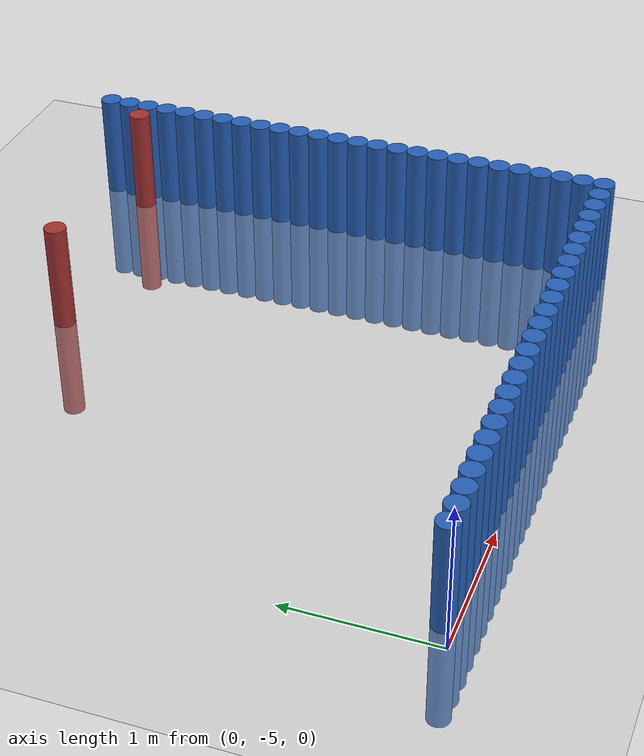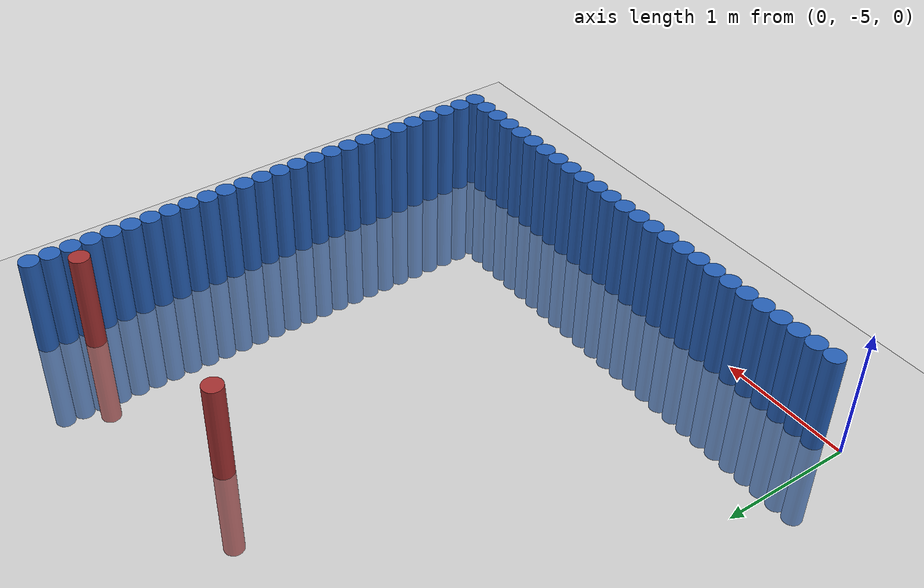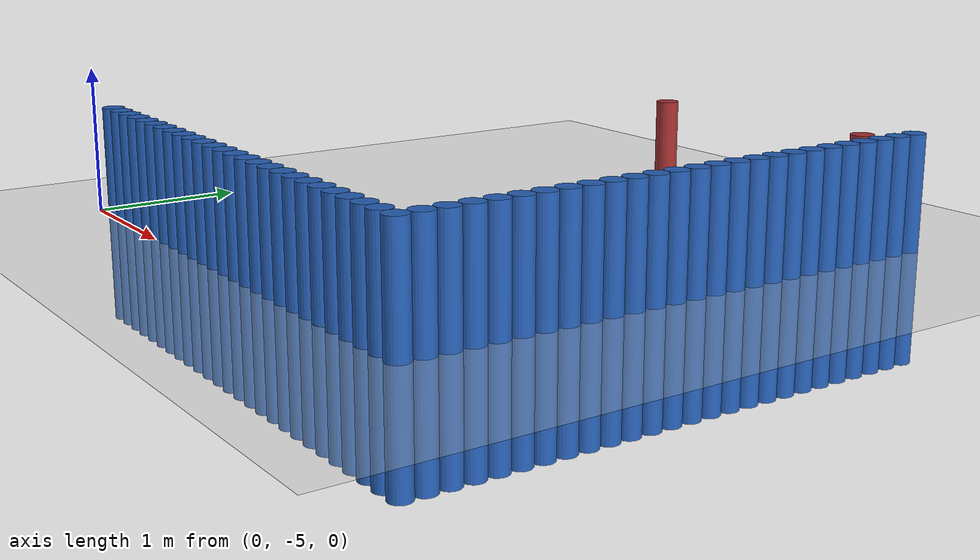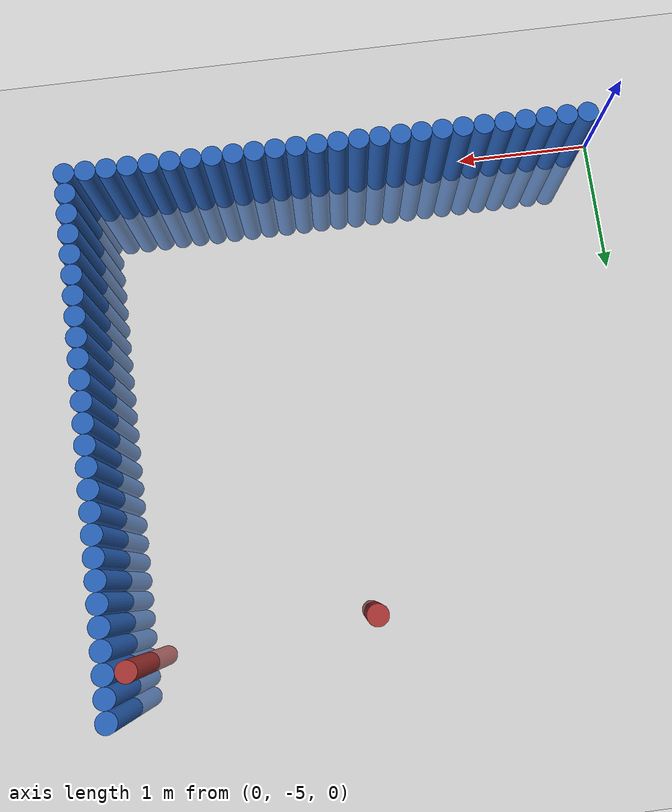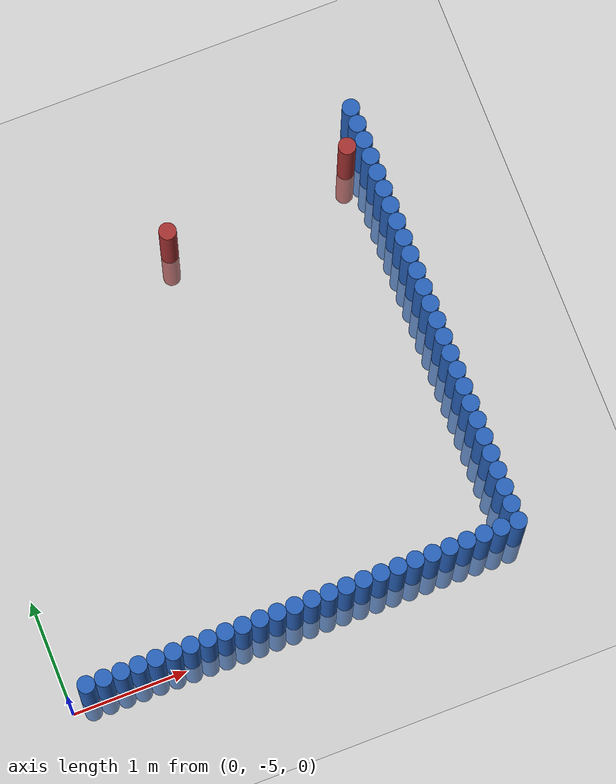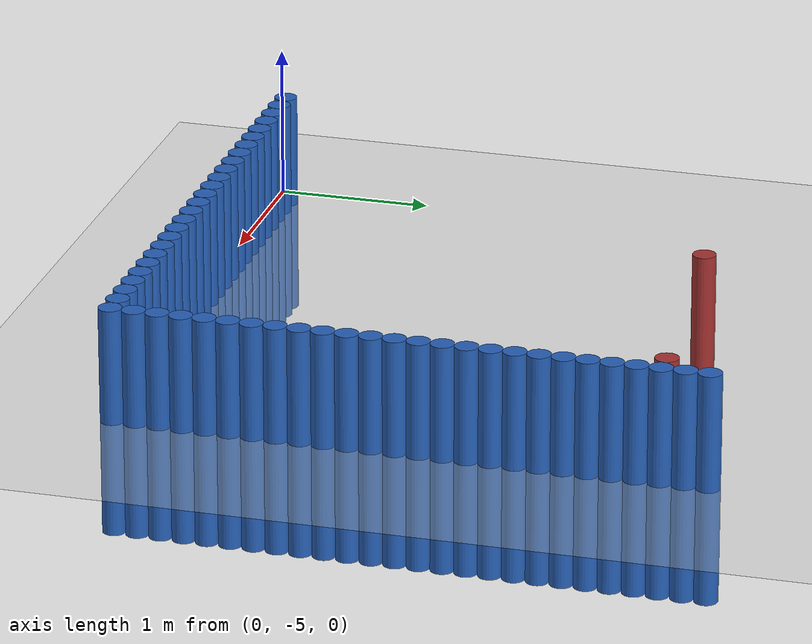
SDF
<sdf version="1.7">
 <world name="default">
  <model name="ground_plane">
   <static>1</static>
   <link name="link">
    <collision name="collision">
     <geometry><plane><normal>0 0 1</normal><size>100 100</size></plane></geometry>
     <surface><friction><ode><mu>100</mu><mu2>50</mu2></ode></friction></surface>
    </collision>
    <visual name="visual">
     <cast_shadows>0</cast_shadows>
     <geometry><plane><normal>0 0 1</normal><size>100 100</size></plane></geometry>
     <material>
      <script><uri>file://media/materials/scripts/gazebo.material</uri><name>Gazebo/Grey</name></script>
     </material>
    </visual>
   </link>
  </model>
  <model name="unit_cylinder_0">
   <static>1</static>
   <pose>3.925 -4.925 0 0 -0 0</pose>
   <link name="link">
    <inertial>
     <mass>1</mass>
     <inertia><ixx>0.145833</ixx><ixy>0</ixy><ixz>0</ixz><iyy>0.145833</iyy><iyz>0</iyz><izz>0.125</izz></inertia>
    </inertial>
    <collision name="collision">
     <geometry><cylinder><radius>0.075</radius><length>1.5</length></cylinder></geometry>
    </collision>
    <visual name="visual">
     <geometry><cylinder><radius>0.075</radius><length>1.5</length></cylinder></geometry>
     <material><ambient>0.152 0.379 0.72 1</ambient><diffuse>0.152 0.379 0.72 1</diffuse></material>
     <material>
      <script><name>Gazebo/Grey</name><uri>file://media/materials/scripts/gazebo.material</uri></script>
     </material>
    </visual>
   </link>
  </model>
  <model name="unit_cylinder_1">
   <static>1</static>
   <pose>3.775 -4.925 0 0 -0 0</pose>
   <link name="link">
    <inertial>
     <mass>1</mass>
     <inertia><ixx>0.145833</ixx><ixy>0</ixy><ixz>0</ixz><iyy>0.145833</iyy><iyz>0</iyz><izz>0.125</izz></inertia>
    </inertial>
    <collision name="collision">
     <geometry><cylinder><radius>0.075</radius><length>1.5</length></cylinder></geometry>
    </collision>
    <visual name="visual">
     <geometry><cylinder><radius>0.075</radius><length>1.5</length></cylinder></geometry>
     <material><ambient>0.152 0.379 0.72 1</ambient><diffuse>0.152 0.379 0.72 1</diffuse></material>
     <material>
      <script><name>Gazebo/Grey</name><uri>file://media/materials/scripts/gazebo.material</uri></script>
     </material>
    </visual>
   </link>
  </model>
  <model name="unit_cylinder_2">
   <static>1</static>
   <pose>3.625 -4.925 0 0 -0 0</pose>
   <link name="link">
    <inertial>
     <mass>1</mass>
     <inertia><ixx>0.145833</ixx><ixy>0</ixy><ixz>0</ixz><iyy>0.145833</iyy><iyz>0</iyz><izz>0.125</izz></inertia>
    </inertial>
    <collision name="collision">
     <geometry><cylinder><radius>0.075</radius><length>1.5</length></cylinder></geometry>
    </collision>
    <visual name="visual">
     <geometry><cylinder><radius>0.075</radius><length>1.5</length></cylinder></geometry>
     <material><ambient>0.152 0.379 0.72 1</ambient><diffuse>0.152 0.379 0.72 1</diffuse></material>
     <material>
      <script><name>Gazebo/Grey</name><uri>file://media/materials/scripts/gazebo.material</uri></script>
     </material>
    </visual>
   </link>
  </model>
  <model name="unit_cylinder_3">
   <static>1</static>
   <pose>3.475 -4.925 0 0 -0 0</pose>
   <link name="link">
    <inertial>
     <mass>1</mass>
     <inertia><ixx>0.145833</ixx><ixy>0</ixy><ixz>0</ixz><iyy>0.145833</iyy><iyz>0</iyz><izz>0.125</izz></inertia>
    </inertial>
    <collision name="collision">
     <geometry><cylinder><radius>0.075</radius><length>1.5</length></cylinder></geometry>
    </collision>
    <visual name="visual">
     <geometry><cylinder><radius>0.075</radius><length>1.5</length></cylinder></geometry>
     <material><ambient>0.152 0.379 0.72 1</ambient><diffuse>0.152 0.379 0.72 1</diffuse></material>
     <material>
      <script><name>Gazebo/Grey</name><uri>file://media/materials/scripts/gazebo.material</uri></script>
     </material>
    </visual>
   </link>
  </model>
  <model name="unit_cylinder_4">
   <static>1</static>
   <pose>3.325 -4.925 0 0 -0 0</pose>
   <link name="link">
    <inertial>
     <mass>1</mass>
     <inertia><ixx>0.145833</ixx><ixy>0</ixy><ixz>0</ixz><iyy>0.145833</iyy><iyz>0</iyz><izz>0.125</izz></inertia>
    </inertial>
    <collision name="collision">
     <geometry><cylinder><radius>0.075</radius><length>1.5</length></cylinder></geometry>
    </collision>
    <visual name="visual">
     <geometry><cylinder><radius>0.075</radius><length>1.5</length></cylinder></geometry>
     <material><ambient>0.152 0.379 0.72 1</ambient><diffuse>0.152 0.379 0.72 1</diffuse></material>
     <material>
      <script><name>Gazebo/Grey</name><uri>file://media/materials/scripts/gazebo.material</uri></script>
     </material>
    </visual>
   </link>
  </model>
  <model name="unit_cylinder_5">
   <static>1</static>
   <pose>3.175 -4.925 0 0 -0 0</pose>
   <link name="link">
    <inertial>
     <mass>1</mass>
     <inertia><ixx>0.145833</ixx><ixy>0</ixy><ixz>0</ixz><iyy>0.145833</iyy><iyz>0</iyz><izz>0.125</izz></inertia>
    </inertial>
    <collision name="collision">
     <geometry><cylinder><radius>0.075</radius><length>1.5</length></cylinder></geometry>
    </collision>
    <visual name="visual">
     <geometry><cylinder><radius>0.075</radius><length>1.5</length></cylinder></geometry>
     <material><ambient>0.152 0.379 0.72 1</ambient><diffuse>0.152 0.379 0.72 1</diffuse></material>
     <material>
      <script><name>Gazebo/Grey</name><uri>file://media/materials/scripts/gazebo.material</uri></script>
     </material>
    </visual>
   </link>
  </model>
  <model name="unit_cylinder_6">
   <static>1</static>
   <pose>3.025 -4.925 0 0 -0 0</pose>
   <link name="link">
    <inertial>
     <mass>1</mass>
     <inertia><ixx>0.145833</ixx><ixy>0</ixy><ixz>0</ixz><iyy>0.145833</iyy><iyz>0</iyz><izz>0.125</izz></inertia>
    </inertial>
    <collision name="collision">
     <geometry><cylinder><radius>0.075</radius><length>1.5</length></cylinder></geometry>
    </collision>
    <visual name="visual">
     <geometry><cylinder><radius>0.075</radius><length>1.5</length></cylinder></geometry>
     <material><ambient>0.152 0.379 0.72 1</ambient><diffuse>0.152 0.379 0.72 1</diffuse></material>
     <material>
      <script><name>Gazebo/Grey</name><uri>file://media/materials/scripts/gazebo.material</uri></script>
     </material>
    </visual>
   </link>
  </model>
  <model name="unit_cylinder_7">
   <static>1</static>
   <pose>2.875 -4.925 0 0 -0 0</pose>
   <link name="link">
    <inertial>
     <mass>1</mass>
     <inertia><ixx>0.145833</ixx><ixy>0</ixy><ixz>0</ixz><iyy>0.145833</iyy><iyz>0</iyz><izz>0.125</izz></inertia>
    </inertial>
    <collision name="collision">
     <geometry><cylinder><radius>0.075</radius><length>1.5</length></cylinder></geometry>
    </collision>
    <visual name="visual">
     <geometry><cylinder><radius>0.075</radius><length>1.5</length></cylinder></geometry>
     <material><ambient>0.152 0.379 0.72 1</ambient><diffuse>0.152 0.379 0.72 1</diffuse></material>
     <material>
      <script><name>Gazebo/Grey</name><uri>file://media/materials/scripts/gazebo.material</uri></script>
     </material>
    </visual>
   </link>
  </model>
  <model name="unit_cylinder_8">
   <static>1</static>
   <pose>2.725 -4.925 0 0 -0 0</pose>
   <link name="link">
    <inertial>
     <mass>1</mass>
     <inertia><ixx>0.145833</ixx><ixy>0</ixy><ixz>0</ixz><iyy>0.145833</iyy><iyz>0</iyz><izz>0.125</izz></inertia>
    </inertial>
    <collision name="collision">
     <geometry><cylinder><radius>0.075</radius><length>1.5</length></cylinder></geometry>
    </collision>
    <visual name="visual">
     <geometry><cylinder><radius>0.075</radius><length>1.5</length></cylinder></geometry>
     <material><ambient>0.152 0.379 0.72 1</ambient><diffuse>0.152 0.379 0.72 1</diffuse></material>
     <material>
      <script><name>Gazebo/Grey</name><uri>file://media/materials/scripts/gazebo.material</uri></script>
     </material>
    </visual>
   </link>
  </model>
  <model name="unit_cylinder_9">
   <static>1</static>
   <pose>2.575 -4.925 0 0 -0 0</pose>
   <link name="link">
    <inertial>
     <mass>1</mass>
     <inertia><ixx>0.145833</ixx><ixy>0</ixy><ixz>0</ixz><iyy>0.145833</iyy><iyz>0</iyz><izz>0.125</izz></inertia>
    </inertial>
    <collision name="collision">
     <geometry><cylinder><radius>0.075</radius><length>1.5</length></cylinder></geometry>
    </collision>
    <visual name="visual">
     <geometry><cylinder><radius>0.075</radius><length>1.5</length></cylinder></geometry>
     <material><ambient>0.152 0.379 0.72 1</ambient><diffuse>0.152 0.379 0.72 1</diffuse></material>
     <material>
      <script><name>Gazebo/Grey</name><uri>file://media/materials/scripts/gazebo.material</uri></script>
     </material>
    </visual>
   </link>
  </model>
  <model name="unit_cylinder_10">
   <static>1</static>
   <pose>2.425 -4.925 0 0 -0 0</pose>
   <link name="link">
    <inertial>
     <mass>1</mass>
     <inertia><ixx>0.145833</ixx><ixy>0</ixy><ixz>0</ixz><iyy>0.145833</iyy><iyz>0</iyz><izz>0.125</izz></inertia>
    </inertial>
    <collision name="collision">
     <geometry><cylinder><radius>0.075</radius><length>1.5</length></cylinder></geometry>
    </collision>
    <visual name="visual">
     <geometry><cylinder><radius>0.075</radius><length>1.5</length></cylinder></geometry>
     <material><ambient>0.152 0.379 0.72 1</ambient><diffuse>0.152 0.379 0.72 1</diffuse></material>
     <material>
      <script><name>Gazebo/Grey</name><uri>file://media/materials/scripts/gazebo.material</uri></script>
     </material>
    </visual>
   </link>
  </model>
  <model name="unit_cylinder_11">
   <static>1</static>
   <pose>2.275 -4.925 0 0 -0 0</pose>
   <link name="link">
    <inertial>
     <mass>1</mass>
     <inertia><ixx>0.145833</ixx><ixy>0</ixy><ixz>0</ixz><iyy>0.145833</iyy><iyz>0</iyz><izz>0.125</izz></inertia>
    </inertial>
    <collision name="collision">
     <geometry><cylinder><radius>0.075</radius><length>1.5</length></cylinder></geometry>
    </collision>
    <visual name="visual">
     <geometry><cylinder><radius>0.075</radius><length>1.5</length></cylinder></geometry>
     <material><ambient>0.152 0.379 0.72 1</ambient><diffuse>0.152 0.379 0.72 1</diffuse></material>
     <material>
      <script><name>Gazebo/Grey</name><uri>file://media/materials/scripts/gazebo.material</uri></script>
     </material>
    </visual>
   </link>
  </model>
  <model name="unit_cylinder_12">
   <static>1</static>
   <pose>2.125 -4.925 0 0 -0 0</pose>
   <link name="link">
    <inertial>
     <mass>1</mass>
     <inertia><ixx>0.145833</ixx><ixy>0</ixy><ixz>0</ixz><iyy>0.145833</iyy><iyz>0</iyz><izz>0.125</izz></inertia>
    </inertial>
    <collision name="collision">
     <geometry><cylinder><radius>0.075</radius><length>1.5</length></cylinder></geometry>
    </collision>
    <visual name="visual">
     <geometry><cylinder><radius>0.075</radius><length>1.5</length></cylinder></geometry>
     <material><ambient>0.152 0.379 0.72 1</ambient><diffuse>0.152 0.379 0.72 1</diffuse></material>
     <material>
      <script><name>Gazebo/Grey</name><uri>file://media/materials/scripts/gazebo.material</uri></script>
     </material>
    </visual>
   </link>
  </model>
  <model name="unit_cylinder_13">
   <static>1</static>
   <pose>1.975 -4.925 0 0 -0 0</pose>
   <link name="link">
    <inertial>
     <mass>1</mass>
     <inertia><ixx>0.145833</ixx><ixy>0</ixy><ixz>0</ixz><iyy>0.145833</iyy><iyz>0</iyz><izz>0.125</izz></inertia>
    </inertial>
    <collision name="collision">
     <geometry><cylinder><radius>0.075</radius><length>1.5</length></cylinder></geometry>
    </collision>
    <visual name="visual">
     <geometry><cylinder><radius>0.075</radius><length>1.5</length></cylinder></geometry>
     <material><ambient>0.152 0.379 0.72 1</ambient><diffuse>0.152 0.379 0.72 1</diffuse></material>
     <material>
      <script><name>Gazebo/Grey</name><uri>file://media/materials/scripts/gazebo.material</uri></script>
     </material>
    </visual>
   </link>
  </model>
  <model name="unit_cylinder_14">
   <static>1</static>
   <pose>1.825 -4.925 0 0 -0 0</pose>
   <link name="link">
    <inertial>
     <mass>1</mass>
     <inertia><ixx>0.145833</ixx><ixy>0</ixy><ixz>0</ixz><iyy>0.145833</iyy><iyz>0</iyz><izz>0.125</izz></inertia>
    </inertial>
    <collision name="collision">
     <geometry><cylinder><radius>0.075</radius><length>1.5</length></cylinder></geometry>
    </collision>
    <visual name="visual">
     <geometry><cylinder><radius>0.075</radius><length>1.5</length></cylinder></geometry>
     <material><ambient>0.152 0.379 0.72 1</ambient><diffuse>0.152 0.379 0.72 1</diffuse></material>
     <material>
      <script><name>Gazebo/Grey</name><uri>file://media/materials/scripts/gazebo.material</uri></script>
     </material>
    </visual>
   </link>
  </model>
  <model name="unit_cylinder_15">
   <static>1</static>
   <pose>1.675 -4.925 0 0 -0 0</pose>
   <link name="link">
    <inertial>
     <mass>1</mass>
     <inertia><ixx>0.145833</ixx><ixy>0</ixy><ixz>0</ixz><iyy>0.145833</iyy><iyz>0</iyz><izz>0.125</izz></inertia>
    </inertial>
    <collision name="collision">
     <geometry><cylinder><radius>0.075</radius><length>1.5</length></cylinder></geometry>
    </collision>
    <visual name="visual">
     <geometry><cylinder><radius>0.075</radius><length>1.5</length></cylinder></geometry>
     <material><ambient>0.152 0.379 0.72 1</ambient><diffuse>0.152 0.379 0.72 1</diffuse></material>
     <material>
      <script><name>Gazebo/Grey</name><uri>file://media/materials/scripts/gazebo.material</uri></script>
     </material>
    </visual>
   </link>
  </model>
  <model name="unit_cylinder_16">
   <static>1</static>
   <pose>1.525 -4.925 0 0 -0 0</pose>
   <link name="link">
    <inertial>
     <mass>1</mass>
     <inertia><ixx>0.145833</ixx><ixy>0</ixy><ixz>0</ixz><iyy>0.145833</iyy><iyz>0</iyz><izz>0.125</izz></inertia>
    </inertial>
    <collision name="collision">
     <geometry><cylinder><radius>0.075</radius><length>1.5</length></cylinder></geometry>
    </collision>
    <visual name="visual">
     <geometry><cylinder><radius>0.075</radius><length>1.5</length></cylinder></geometry>
     <material><ambient>0.152 0.379 0.72 1</ambient><diffuse>0.152 0.379 0.72 1</diffuse></material>
     <material>
      <script><name>Gazebo/Grey</name><uri>file://media/materials/scripts/gazebo.material</uri></script>
     </material>
    </visual>
   </link>
  </model>
  <model name="unit_cylinder_17">
   <static>1</static>
   <pose>1.375 -4.925 0 0 -0 0</pose>
   <link name="link">
    <inertial>
     <mass>1</mass>
     <inertia><ixx>0.145833</ixx><ixy>0</ixy><ixz>0</ixz><iyy>0.145833</iyy><iyz>0</iyz><izz>0.125</izz></inertia>
    </inertial>
    <collision name="collision">
     <geometry><cylinder><radius>0.075</radius><length>1.5</length></cylinder></geometry>
    </collision>
    <visual name="visual">
     <geometry><cylinder><radius>0.075</radius><length>1.5</length></cylinder></geometry>
     <material><ambient>0.152 0.379 0.72 1</ambient><diffuse>0.152 0.379 0.72 1</diffuse></material>
     <material>
      <script><name>Gazebo/Grey</name><uri>file://media/materials/scripts/gazebo.material</uri></script>
     </material>
    </visual>
   </link>
  </model>
  <model name="unit_cylinder_18">
   <static>1</static>
   <pose>1.225 -4.925 0 0 -0 0</pose>
   <link name="link">
    <inertial>
     <mass>1</mass>
     <inertia><ixx>0.145833</ixx><ixy>0</ixy><ixz>0</ixz><iyy>0.145833</iyy><iyz>0</iyz><izz>0.125</izz></inertia>
    </inertial>
    <collision name="collision">
     <geometry><cylinder><radius>0.075</radius><length>1.5</length></cylinder></geometry>
    </collision>
    <visual name="visual">
     <geometry><cylinder><radius>0.075</radius><length>1.5</length></cylinder></geometry>
     <material><ambient>0.152 0.379 0.72 1</ambient><diffuse>0.152 0.379 0.72 1</diffuse></material>
     <material>
      <script><name>Gazebo/Grey</name><uri>file://media/materials/scripts/gazebo.material</uri></script>
     </material>
    </visual>
   </link>
  </model>
  <model name="unit_cylinder_19">
   <static>1</static>
   <pose>1.075 -4.925 0 0 -0 0</pose>
   <link name="link">
    <inertial>
     <mass>1</mass>
     <inertia><ixx>0.145833</ixx><ixy>0</ixy><ixz>0</ixz><iyy>0.145833</iyy><iyz>0</iyz><izz>0.125</izz></inertia>
    </inertial>
    <collision name="collision">
     <geometry><cylinder><radius>0.075</radius><length>1.5</length></cylinder></geometry>
    </collision>
    <visual name="visual">
     <geometry><cylinder><radius>0.075</radius><length>1.5</length></cylinder></geometry>
     <material><ambient>0.152 0.379 0.72 1</ambient><diffuse>0.152 0.379 0.72 1</diffuse></material>
     <material>
      <script><name>Gazebo/Grey</name><uri>file://media/materials/scripts/gazebo.material</uri></script>
     </material>
    </visual>
   </link>
  </model>
  <model name="unit_cylinder_20">
   <static>1</static>
   <pose>0.925 -4.925 0 0 -0 0</pose>
   <link name="link">
    <inertial>
     <mass>1</mass>
     <inertia><ixx>0.145833</ixx><ixy>0</ixy><ixz>0</ixz><iyy>0.145833</iyy><iyz>0</iyz><izz>0.125</izz></inertia>
    </inertial>
    <collision name="collision">
     <geometry><cylinder><radius>0.075</radius><length>1.5</length></cylinder></geometry>
    </collision>
    <visual name="visual">
     <geometry><cylinder><radius>0.075</radius><length>1.5</length></cylinder></geometry>
     <material><ambient>0.152 0.379 0.72 1</ambient><diffuse>0.152 0.379 0.72 1</diffuse></material>
     <material>
      <script><name>Gazebo/Grey</name><uri>file://media/materials/scripts/gazebo.material</uri></script>
     </material>
    </visual>
   </link>
  </model>
  <model name="unit_cylinder_21">
   <static>1</static>
   <pose>0.775 -4.925 0 0 -0 0</pose>
   <link name="link">
    <inertial>
     <mass>1</mass>
     <inertia><ixx>0.145833</ixx><ixy>0</ixy><ixz>0</ixz><iyy>0.145833</iyy><iyz>0</iyz><izz>0.125</izz></inertia>
    </inertial>
    <collision name="collision">
     <geometry><cylinder><radius>0.075</radius><length>1.5</length></cylinder></geometry>
    </collision>
    <visual name="visual">
     <geometry><cylinder><radius>0.075</radius><length>1.5</length></cylinder></geometry>
     <material><ambient>0.152 0.379 0.72 1</ambient><diffuse>0.152 0.379 0.72 1</diffuse></material>
     <material>
      <script><name>Gazebo/Grey</name><uri>file://media/materials/scripts/gazebo.material</uri></script>
     </material>
    </visual>
   </link>
  </model>
  <model name="unit_cylinder_22">
   <static>1</static>
   <pose>0.625 -4.925 0 0 -0 0</pose>
   <link name="link">
    <inertial>
     <mass>1</mass>
     <inertia><ixx>0.145833</ixx><ixy>0</ixy><ixz>0</ixz><iyy>0.145833</iyy><iyz>0</iyz><izz>0.125</izz></inertia>
    </inertial>
    <collision name="collision">
     <geometry><cylinder><radius>0.075</radius><length>1.5</length></cylinder></geometry>
    </collision>
    <visual name="visual">
     <geometry><cylinder><radius>0.075</radius><length>1.5</length></cylinder></geometry>
     <material><ambient>0.152 0.379 0.72 1</ambient><diffuse>0.152 0.379 0.72 1</diffuse></material>
     <material>
      <script><name>Gazebo/Grey</name><uri>file://media/materials/scripts/gazebo.material</uri></script>
     </material>
    </visual>
   </link>
  </model>
  <model name="unit_cylinder_23">
   <static>1</static>
   <pose>0.475 -4.925 0 0 -0 0</pose>
   <link name="link">
    <inertial>
     <mass>1</mass>
     <inertia><ixx>0.145833</ixx><ixy>0</ixy><ixz>0</ixz><iyy>0.145833</iyy><iyz>0</iyz><izz>0.125</izz></inertia>
    </inertial>
    <collision name="collision">
     <geometry><cylinder><radius>0.075</radius><length>1.5</length></cylinder></geometry>
    </collision>
    <visual name="visual">
     <geometry><cylinder><radius>0.075</radius><length>1.5</length></cylinder></geometry>
     <material><ambient>0.152 0.379 0.72 1</ambient><diffuse>0.152 0.379 0.72 1</diffuse></material>
     <material>
      <script><name>Gazebo/Grey</name><uri>file://media/materials/scripts/gazebo.material</uri></script>
     </material>
    </visual>
   </link>
  </model>
  <model name="unit_cylinder_24">
   <static>1</static>
   <pose>0.325 -4.925 0 0 -0 0</pose>
   <link name="link">
    <inertial>
     <mass>1</mass>
     <inertia><ixx>0.145833</ixx><ixy>0</ixy><ixz>0</ixz><iyy>0.145833</iyy><iyz>0</iyz><izz>0.125</izz></inertia>
    </inertial>
    <collision name="collision">
     <geometry><cylinder><radius>0.075</radius><length>1.5</length></cylinder></geometry>
    </collision>
    <visual name="visual">
     <geometry><cylinder><radius>0.075</radius><length>1.5</length></cylinder></geometry>
     <material><ambient>0.152 0.379 0.72 1</ambient><diffuse>0.152 0.379 0.72 1</diffuse></material>
     <material>
      <script><name>Gazebo/Grey</name><uri>file://media/materials/scripts/gazebo.material</uri></script>
     </material>
    </visual>
   </link>
  </model>
  <model name="unit_cylinder_25">
   <static>1</static>
   <pose>0.175 -4.925 0 0 -0 0</pose>
   <link name="link">
    <inertial>
     <mass>1</mass>
     <inertia><ixx>0.145833</ixx><ixy>0</ixy><ixz>0</ixz><iyy>0.145833</iyy><iyz>0</iyz><izz>0.125</izz></inertia>
    </inertial>
    <collision name="collision">
     <geometry><cylinder><radius>0.075</radius><length>1.5</length></cylinder></geometry>
    </collision>
    <visual name="visual">
     <geometry><cylinder><radius>0.075</radius><length>1.5</length></cylinder></geometry>
     <material><ambient>0.152 0.379 0.72 1</ambient><diffuse>0.152 0.379 0.72 1</diffuse></material>
     <material>
      <script><name>Gazebo/Grey</name><uri>file://media/materials/scripts/gazebo.material</uri></script>
     </material>
    </visual>
   </link>
  </model>
  <model name="unit_cylinder_50">
   <static>1</static>
   <pose>3.925 -4.775 0 0 -0 0</pose>
   <link name="link">
    <inertial>
     <mass>1</mass>
     <inertia><ixx>0.145833</ixx><ixy>0</ixy><ixz>0</ixz><iyy>0.145833</iyy><iyz>0</iyz><izz>0.125</izz></inertia>
    </inertial>
    <collision name="collision">
     <geometry><cylinder><radius>0.075</radius><length>1.5</length></cylinder></geometry>
    </collision>
    <visual name="visual">
     <geometry><cylinder><radius>0.075</radius><length>1.5</length></cylinder></geometry>
     <material><ambient>0.152 0.379 0.72 1</ambient><diffuse>0.152 0.379 0.72 1</diffuse></material>
     <material>
      <script><name>Gazebo/Grey</name><uri>file://media/materials/scripts/gazebo.material</uri></script>
     </material>
    </visual>
   </link>
  </model>
  <model name="unit_cylinder_52">
   <static>1</static>
   <pose>3.925 -4.625 0 0 -0 0</pose>
   <link name="link">
    <inertial>
     <mass>1</mass>
     <inertia><ixx>0.145833</ixx><ixy>0</ixy><ixz>0</ixz><iyy>0.145833</iyy><iyz>0</iyz><izz>0.125</izz></inertia>
    </inertial>
    <collision name="collision">
     <geometry><cylinder><radius>0.075</radius><length>1.5</length></cylinder></geometry>
    </collision>
    <visual name="visual">
     <geometry><cylinder><radius>0.075</radius><length>1.5</length></cylinder></geometry>
     <material><ambient>0.152 0.379 0.72 1</ambient><diffuse>0.152 0.379 0.72 1</diffuse></material>
     <material>
      <script><name>Gazebo/Grey</name><uri>file://media/materials/scripts/gazebo.material</uri></script>
     </material>
    </visual>
   </link>
  </model>
  <model name="unit_cylinder_54">
   <static>1</static>
   <pose>3.925 -4.475 0 0 -0 0</pose>
   <link name="link">
    <inertial>
     <mass>1</mass>
     <inertia><ixx>0.145833</ixx><ixy>0</ixy><ixz>0</ixz><iyy>0.145833</iyy><iyz>0</iyz><izz>0.125</izz></inertia>
    </inertial>
    <collision name="collision">
     <geometry><cylinder><radius>0.075</radius><length>1.5</length></cylinder></geometry>
    </collision>
    <visual name="visual">
     <geometry><cylinder><radius>0.075</radius><length>1.5</length></cylinder></geometry>
     <material><ambient>0.152 0.379 0.72 1</ambient><diffuse>0.152 0.379 0.72 1</diffuse></material>
     <material>
      <script><name>Gazebo/Grey</name><uri>file://media/materials/scripts/gazebo.material</uri></script>
     </material>
    </visual>
   </link>
  </model>
  <model name="unit_cylinder_56">
   <static>1</static>
   <pose>3.925 -4.325 0 0 -0 0</pose>
   <link name="link">
    <inertial>
     <mass>1</mass>
     <inertia><ixx>0.145833</ixx><ixy>0</ixy><ixz>0</ixz><iyy>0.145833</iyy><iyz>0</iyz><izz>0.125</izz></inertia>
    </inertial>
    <collision name="collision">
     <geometry><cylinder><radius>0.075</radius><length>1.5</length></cylinder></geometry>
    </collision>
    <visual name="visual">
     <geometry><cylinder><radius>0.075</radius><length>1.5</length></cylinder></geometry>
     <material><ambient>0.152 0.379 0.72 1</ambient><diffuse>0.152 0.379 0.72 1</diffuse></material>
     <material>
      <script><name>Gazebo/Grey</name><uri>file://media/materials/scripts/gazebo.material</uri></script>
     </material>
    </visual>
   </link>
  </model>
  <model name="unit_cylinder_58">
   <static>1</static>
   <pose>3.925 -4.175 0 0 -0 0</pose>
   <link name="link">
    <inertial>
     <mass>1</mass>
     <inertia><ixx>0.145833</ixx><ixy>0</ixy><ixz>0</ixz><iyy>0.145833</iyy><iyz>0</iyz><izz>0.125</izz></inertia>
    </inertial>
    <collision name="collision">
     <geometry><cylinder><radius>0.075</radius><length>1.5</length></cylinder></geometry>
    </collision>
    <visual name="visual">
     <geometry><cylinder><radius>0.075</radius><length>1.5</length></cylinder></geometry>
     <material><ambient>0.152 0.379 0.72 1</ambient><diffuse>0.152 0.379 0.72 1</diffuse></material>
     <material>
      <script><name>Gazebo/Grey</name><uri>file://media/materials/scripts/gazebo.material</uri></script>
     </material>
    </visual>
   </link>
  </model>
  <model name="unit_cylinder_60">
   <static>1</static>
   <pose>3.925 -4.025 0 0 -0 0</pose>
   <link name="link">
    <inertial>
     <mass>1</mass>
     <inertia><ixx>0.145833</ixx><ixy>0</ixy><ixz>0</ixz><iyy>0.145833</iyy><iyz>0</iyz><izz>0.125</izz></inertia>
    </inertial>
    <collision name="collision">
     <geometry><cylinder><radius>0.075</radius><length>1.5</length></cylinder></geometry>
    </collision>
    <visual name="visual">
     <geometry><cylinder><radius>0.075</radius><length>1.5</length></cylinder></geometry>
     <material><ambient>0.152 0.379 0.72 1</ambient><diffuse>0.152 0.379 0.72 1</diffuse></material>
     <material>
      <script><name>Gazebo/Grey</name><uri>file://media/materials/scripts/gazebo.material</uri></script>
     </material>
    </visual>
   </link>
  </model>
  <model name="unit_cylinder_62">
   <static>1</static>
   <pose>3.925 -3.875 0 0 -0 0</pose>
   <link name="link">
    <inertial>
     <mass>1</mass>
     <inertia><ixx>0.145833</ixx><ixy>0</ixy><ixz>0</ixz><iyy>0.145833</iyy><iyz>0</iyz><izz>0.125</izz></inertia>
    </inertial>
    <collision name="collision">
     <geometry><cylinder><radius>0.075</radius><length>1.5</length></cylinder></geometry>
    </collision>
    <visual name="visual">
     <geometry><cylinder><radius>0.075</radius><length>1.5</length></cylinder></geometry>
     <material><ambient>0.152 0.379 0.72 1</ambient><diffuse>0.152 0.379 0.72 1</diffuse></material>
     <material>
      <script><name>Gazebo/Grey</name><uri>file://media/materials/scripts/gazebo.material</uri></script>
     </material>
    </visual>
   </link>
  </model>
  <model name="unit_cylinder_64">
   <static>1</static>
   <pose>3.925 -3.725 0 0 -0 0</pose>
   <link name="link">
    <inertial>
     <mass>1</mass>
     <inertia><ixx>0.145833</ixx><ixy>0</ixy><ixz>0</ixz><iyy>0.145833</iyy><iyz>0</iyz><izz>0.125</izz></inertia>
    </inertial>
    <collision name="collision">
     <geometry><cylinder><radius>0.075</radius><length>1.5</length></cylinder></geometry>
    </collision>
    <visual name="visual">
     <geometry><cylinder><radius>0.075</radius><length>1.5</length></cylinder></geometry>
     <material><ambient>0.152 0.379 0.72 1</ambient><diffuse>0.152 0.379 0.72 1</diffuse></material>
     <material>
      <script><name>Gazebo/Grey</name><uri>file://media/materials/scripts/gazebo.material</uri></script>
     </material>
    </visual>
   </link>
  </model>
  <model name="unit_cylinder_66">
   <static>1</static>
   <pose>3.925 -3.575 0 0 -0 0</pose>
   <link name="link">
    <inertial>
     <mass>1</mass>
     <inertia><ixx>0.145833</ixx><ixy>0</ixy><ixz>0</ixz><iyy>0.145833</iyy><iyz>0</iyz><izz>0.125</izz></inertia>
    </inertial>
    <collision name="collision">
     <geometry><cylinder><radius>0.075</radius><length>1.5</length></cylinder></geometry>
    </collision>
    <visual name="visual">
     <geometry><cylinder><radius>0.075</radius><length>1.5</length></cylinder></geometry>
     <material><ambient>0.152 0.379 0.72 1</ambient><diffuse>0.152 0.379 0.72 1</diffuse></material>
     <material>
      <script><name>Gazebo/Grey</name><uri>file://media/materials/scripts/gazebo.material</uri></script>
     </material>
    </visual>
   </link>
  </model>
  <model name="unit_cylinder_68">
   <static>1</static>
   <pose>3.925 -3.425 0 0 -0 0</pose>
   <link name="link">
    <inertial>
     <mass>1</mass>
     <inertia><ixx>0.145833</ixx><ixy>0</ixy><ixz>0</ixz><iyy>0.145833</iyy><iyz>0</iyz><izz>0.125</izz></inertia>
    </inertial>
    <collision name="collision">
     <geometry><cylinder><radius>0.075</radius><length>1.5</length></cylinder></geometry>
    </collision>
    <visual name="visual">
     <geometry><cylinder><radius>0.075</radius><length>1.5</length></cylinder></geometry>
     <material><ambient>0.152 0.379 0.72 1</ambient><diffuse>0.152 0.379 0.72 1</diffuse></material>
     <material>
      <script><name>Gazebo/Grey</name><uri>file://media/materials/scripts/gazebo.material</uri></script>
     </material>
    </visual>
   </link>
  </model>
  <model name="unit_cylinder_70">
   <static>1</static>
   <pose>3.925 -3.275 0 0 -0 0</pose>
   <link name="link">
    <inertial>
     <mass>1</mass>
     <inertia><ixx>0.145833</ixx><ixy>0</ixy><ixz>0</ixz><iyy>0.145833</iyy><iyz>0</iyz><izz>0.125</izz></inertia>
    </inertial>
    <collision name="collision">
     <geometry><cylinder><radius>0.075</radius><length>1.5</length></cylinder></geometry>
    </collision>
    <visual name="visual">
     <geometry><cylinder><radius>0.075</radius><length>1.5</length></cylinder></geometry>
     <material><ambient>0.152 0.379 0.72 1</ambient><diffuse>0.152 0.379 0.72 1</diffuse></material>
     <material>
      <script><name>Gazebo/Grey</name><uri>file://media/materials/scripts/gazebo.material</uri></script>
     </material>
    </visual>
   </link>
  </model>
  <model name="unit_cylinder_72">
   <static>1</static>
   <pose>3.925 -3.125 0 0 -0 0</pose>
   <link name="link">
    <inertial>
     <mass>1</mass>
     <inertia><ixx>0.145833</ixx><ixy>0</ixy><ixz>0</ixz><iyy>0.145833</iyy><iyz>0</iyz><izz>0.125</izz></inertia>
    </inertial>
    <collision name="collision">
     <geometry><cylinder><radius>0.075</radius><length>1.5</length></cylinder></geometry>
    </collision>
    <visual name="visual">
     <geometry><cylinder><radius>0.075</radius><length>1.5</length></cylinder></geometry>
     <material><ambient>0.152 0.379 0.72 1</ambient><diffuse>0.152 0.379 0.72 1</diffuse></material>
     <material>
      <script><name>Gazebo/Grey</name><uri>file://media/materials/scripts/gazebo.material</uri></script>
     </material>
    </visual>
   </link>
  </model>
  <model name="unit_cylinder_74">
   <static>1</static>
   <pose>3.925 -2.975 0 0 -0 0</pose>
   <link name="link">
    <inertial>
     <mass>1</mass>
     <inertia><ixx>0.145833</ixx><ixy>0</ixy><ixz>0</ixz><iyy>0.145833</iyy><iyz>0</iyz><izz>0.125</izz></inertia>
    </inertial>
    <collision name="collision">
     <geometry><cylinder><radius>0.075</radius><length>1.5</length></cylinder></geometry>
    </collision>
    <visual name="visual">
     <geometry><cylinder><radius>0.075</radius><length>1.5</length></cylinder></geometry>
     <material><ambient>0.152 0.379 0.72 1</ambient><diffuse>0.152 0.379 0.72 1</diffuse></material>
     <material>
      <script><name>Gazebo/Grey</name><uri>file://media/materials/scripts/gazebo.material</uri></script>
     </material>
    </visual>
   </link>
  </model>
  <model name="unit_cylinder_76">
   <static>1</static>
   <pose>3.925 -2.825 0 0 -0 0</pose>
   <link name="link">
    <inertial>
     <mass>1</mass>
     <inertia><ixx>0.145833</ixx><ixy>0</ixy><ixz>0</ixz><iyy>0.145833</iyy><iyz>0</iyz><izz>0.125</izz></inertia>
    </inertial>
    <collision name="collision">
     <geometry><cylinder><radius>0.075</radius><length>1.5</length></cylinder></geometry>
    </collision>
    <visual name="visual">
     <geometry><cylinder><radius>0.075</radius><length>1.5</length></cylinder></geometry>
     <material><ambient>0.152 0.379 0.72 1</ambient><diffuse>0.152 0.379 0.72 1</diffuse></material>
     <material>
      <script><name>Gazebo/Grey</name><uri>file://media/materials/scripts/gazebo.material</uri></script>
     </material>
    </visual>
   </link>
  </model>
  <model name="unit_cylinder_78">
   <static>1</static>
   <pose>3.925 -2.675 0 0 -0 0</pose>
   <link name="link">
    <inertial>
     <mass>1</mass>
     <inertia><ixx>0.145833</ixx><ixy>0</ixy><ixz>0</ixz><iyy>0.145833</iyy><iyz>0</iyz><izz>0.125</izz></inertia>
    </inertial>
    <collision name="collision">
     <geometry><cylinder><radius>0.075</radius><length>1.5</length></cylinder></geometry>
    </collision>
    <visual name="visual">
     <geometry><cylinder><radius>0.075</radius><length>1.5</length></cylinder></geometry>
     <material><ambient>0.152 0.379 0.72 1</ambient><diffuse>0.152 0.379 0.72 1</diffuse></material>
     <material>
      <script><name>Gazebo/Grey</name><uri>file://media/materials/scripts/gazebo.material</uri></script>
     </material>
    </visual>
   </link>
  </model>
  <model name="unit_cylinder_80">
   <static>1</static>
   <pose>3.925 -2.525 0 0 -0 0</pose>
   <link name="link">
    <inertial>
     <mass>1</mass>
     <inertia><ixx>0.145833</ixx><ixy>0</ixy><ixz>0</ixz><iyy>0.145833</iyy><iyz>0</iyz><izz>0.125</izz></inertia>
    </inertial>
    <collision name="collision">
     <geometry><cylinder><radius>0.075</radius><length>1.5</length></cylinder></geometry>
    </collision>
    <visual name="visual">
     <geometry><cylinder><radius>0.075</radius><length>1.5</length></cylinder></geometry>
     <material><ambient>0.152 0.379 0.72 1</ambient><diffuse>0.152 0.379 0.72 1</diffuse></material>
     <material>
      <script><name>Gazebo/Grey</name><uri>file://media/materials/scripts/gazebo.material</uri></script>
     </material>
    </visual>
   </link>
  </model>
  <model name="unit_cylinder_82">
   <static>1</static>
   <pose>3.925 -2.375 0 0 -0 0</pose>
   <link name="link">
    <inertial>
     <mass>1</mass>
     <inertia><ixx>0.145833</ixx><ixy>0</ixy><ixz>0</ixz><iyy>0.145833</iyy><iyz>0</iyz><izz>0.125</izz></inertia>
    </inertial>
    <collision name="collision">
     <geometry><cylinder><radius>0.075</radius><length>1.5</length></cylinder></geometry>
    </collision>
    <visual name="visual">
     <geometry><cylinder><radius>0.075</radius><length>1.5</length></cylinder></geometry>
     <material><ambient>0.152 0.379 0.72 1</ambient><diffuse>0.152 0.379 0.72 1</diffuse></material>
     <material>
      <script><name>Gazebo/Grey</name><uri>file://media/materials/scripts/gazebo.material</uri></script>
     </material>
    </visual>
   </link>
  </model>
  <model name="unit_cylinder_84">
   <static>1</static>
   <pose>3.925 -2.225 0 0 -0 0</pose>
   <link name="link">
    <inertial>
     <mass>1</mass>
     <inertia><ixx>0.145833</ixx><ixy>0</ixy><ixz>0</ixz><iyy>0.145833</iyy><iyz>0</iyz><izz>0.125</izz></inertia>
    </inertial>
    <collision name="collision">
     <geometry><cylinder><radius>0.075</radius><length>1.5</length></cylinder></geometry>
    </collision>
    <visual name="visual">
     <geometry><cylinder><radius>0.075</radius><length>1.5</length></cylinder></geometry>
     <material><ambient>0.152 0.379 0.72 1</ambient><diffuse>0.152 0.379 0.72 1</diffuse></material>
     <material>
      <script><name>Gazebo/Grey</name><uri>file://media/materials/scripts/gazebo.material</uri></script>
     </material>
    </visual>
   </link>
  </model>
  <model name="unit_cylinder_86">
   <static>1</static>
   <pose>3.925 -2.075 0 0 -0 0</pose>
   <link name="link">
    <inertial>
     <mass>1</mass>
     <inertia><ixx>0.145833</ixx><ixy>0</ixy><ixz>0</ixz><iyy>0.145833</iyy><iyz>0</iyz><izz>0.125</izz></inertia>
    </inertial>
    <collision name="collision">
     <geometry><cylinder><radius>0.075</radius><length>1.5</length></cylinder></geometry>
    </collision>
    <visual name="visual">
     <geometry><cylinder><radius>0.075</radius><length>1.5</length></cylinder></geometry>
     <material><ambient>0.152 0.379 0.72 1</ambient><diffuse>0.152 0.379 0.72 1</diffuse></material>
     <material>
      <script><name>Gazebo/Grey</name><uri>file://media/materials/scripts/gazebo.material</uri></script>
     </material>
    </visual>
   </link>
  </model>
  <model name="unit_cylinder_88">
   <static>1</static>
   <pose>3.925 -1.925 0 0 -0 0</pose>
   <link name="link">
    <inertial>
     <mass>1</mass>
     <inertia><ixx>0.145833</ixx><ixy>0</ixy><ixz>0</ixz><iyy>0.145833</iyy><iyz>0</iyz><izz>0.125</izz></inertia>
    </inertial>
    <collision name="collision">
     <geometry><cylinder><radius>0.075</radius><length>1.5</length></cylinder></geometry>
    </collision>
    <visual name="visual">
     <geometry><cylinder><radius>0.075</radius><length>1.5</length></cylinder></geometry>
     <material><ambient>0.152 0.379 0.72 1</ambient><diffuse>0.152 0.379 0.72 1</diffuse></material>
     <material>
      <script><name>Gazebo/Grey</name><uri>file://media/materials/scripts/gazebo.material</uri></script>
     </material>
    </visual>
   </link>
  </model>
  <model name="unit_cylinder_90">
   <static>1</static>
   <pose>3.925 -1.775 0 0 -0 0</pose>
   <link name="link">
    <inertial>
     <mass>1</mass>
     <inertia><ixx>0.145833</ixx><ixy>0</ixy><ixz>0</ixz><iyy>0.145833</iyy><iyz>0</iyz><izz>0.125</izz></inertia>
    </inertial>
    <collision name="collision">
     <geometry><cylinder><radius>0.075</radius><length>1.5</length></cylinder></geometry>
    </collision>
    <visual name="visual">
     <geometry><cylinder><radius>0.075</radius><length>1.5</length></cylinder></geometry>
     <material><ambient>0.152 0.379 0.72 1</ambient><diffuse>0.152 0.379 0.72 1</diffuse></material>
     <material>
      <script><name>Gazebo/Grey</name><uri>file://media/materials/scripts/gazebo.material</uri></script>
     </material>
    </visual>
   </link>
  </model>
  <model name="unit_cylinder_92">
   <static>1</static>
   <pose>3.925 -1.625 0 0 -0 0</pose>
   <link name="link">
    <inertial>
     <mass>1</mass>
     <inertia><ixx>0.145833</ixx><ixy>0</ixy><ixz>0</ixz><iyy>0.145833</iyy><iyz>0</iyz><izz>0.125</izz></inertia>
    </inertial>
    <collision name="collision">
     <geometry><cylinder><radius>0.075</radius><length>1.5</length></cylinder></geometry>
    </collision>
    <visual name="visual">
     <geometry><cylinder><radius>0.075</radius><length>1.5</length></cylinder></geometry>
     <material><ambient>0.152 0.379 0.72 1</ambient><diffuse>0.152 0.379 0.72 1</diffuse></material>
     <material>
      <script><name>Gazebo/Grey</name><uri>file://media/materials/scripts/gazebo.material</uri></script>
     </material>
    </visual>
   </link>
  </model>
  <model name="unit_cylinder_94">
   <static>1</static>
   <pose>3.925 -1.475 0 0 -0 0</pose>
   <link name="link">
    <inertial>
     <mass>1</mass>
     <inertia><ixx>0.145833</ixx><ixy>0</ixy><ixz>0</ixz><iyy>0.145833</iyy><iyz>0</iyz><izz>0.125</izz></inertia>
    </inertial>
    <collision name="collision">
     <geometry><cylinder><radius>0.075</radius><length>1.5</length></cylinder></geometry>
    </collision>
    <visual name="visual">
     <geometry><cylinder><radius>0.075</radius><length>1.5</length></cylinder></geometry>
     <material><ambient>0.152 0.379 0.72 1</ambient><diffuse>0.152 0.379 0.72 1</diffuse></material>
     <material>
      <script><name>Gazebo/Grey</name><uri>file://media/materials/scripts/gazebo.material</uri></script>
     </material>
    </visual>
   </link>
  </model>
  <model name="unit_cylinder_96">
   <static>1</static>
   <pose>3.925 -1.325 0 0 -0 0</pose>
   <link name="link">
    <inertial>
     <mass>1</mass>
     <inertia><ixx>0.145833</ixx><ixy>0</ixy><ixz>0</ixz><iyy>0.145833</iyy><iyz>0</iyz><izz>0.125</izz></inertia>
    </inertial>
    <collision name="collision">
     <geometry><cylinder><radius>0.075</radius><length>1.5</length></cylinder></geometry>
    </collision>
    <visual name="visual">
     <geometry><cylinder><radius>0.075</radius><length>1.5</length></cylinder></geometry>
     <material><ambient>0.152 0.379 0.72 1</ambient><diffuse>0.152 0.379 0.72 1</diffuse></material>
     <material>
      <script><name>Gazebo/Grey</name><uri>file://media/materials/scripts/gazebo.material</uri></script>
     </material>
    </visual>
   </link>
  </model>
  <model name="unit_cylinder_98">
   <static>1</static>
   <pose>3.925 -1.175 0 0 -0 0</pose>
   <link name="link">
    <inertial>
     <mass>1</mass>
     <inertia><ixx>0.145833</ixx><ixy>0</ixy><ixz>0</ixz><iyy>0.145833</iyy><iyz>0</iyz><izz>0.125</izz></inertia>
    </inertial>
    <collision name="collision">
     <geometry><cylinder><radius>0.075</radius><length>1.5</length></cylinder></geometry>
    </collision>
    <visual name="visual">
     <geometry><cylinder><radius>0.075</radius><length>1.5</length></cylinder></geometry>
     <material><ambient>0.152 0.379 0.72 1</ambient><diffuse>0.152 0.379 0.72 1</diffuse></material>
     <material>
      <script><name>Gazebo/Grey</name><uri>file://media/materials/scripts/gazebo.material</uri></script>
     </material>
    </visual>
   </link>
  </model>
  <model name="unit_cylinder_404">
   <static>1</static>
   <pose>2.125 -1.625 0 0 -0 0</pose>
   <link name="link">
    <inertial>
     <mass>1</mass>
     <inertia><ixx>0.145833</ixx><ixy>0</ixy><ixz>0</ixz><iyy>0.145833</iyy><iyz>0</iyz><izz>0.125</izz></inertia>
    </inertial>
    <collision name="collision">
     <geometry><cylinder><radius>0.075</radius><length>1.5</length></cylinder></geometry>
    </collision>
    <visual name="visual">
     <geometry><cylinder><radius>0.075</radius><length>1.5</length></cylinder></geometry>
     <material><ambient>0.648 0.192 0.192 1</ambient><diffuse>0.648 0.192 0.192 1</diffuse></material>
     <material>
      <script><name>Gazebo/Grey</name><uri>file://media/materials/scripts/gazebo.material</uri></script>
     </material>
    </visual>
   </link>
  </model>
  <model name="unit_cylinder_444">
   <static>1</static>
   <pose>3.775 -1.475 0 0 -0 0</pose>
   <link name="link">
    <inertial>
     <mass>1</mass>
     <inertia><ixx>0.145833</ixx><ixy>0</ixy><ixz>0</ixz><iyy>0.145833</iyy><iyz>0</iyz><izz>0.125</izz></inertia>
    </inertial>
    <collision name="collision">
     <geometry><cylinder><radius>0.075</radius><length>1.5</length></cylinder></geometry>
    </collision>
    <visual name="visual">
     <geometry><cylinder><radius>0.075</radius><length>1.5</length></cylinder></geometry>
     <material><ambient>0.648 0.192 0.192 1</ambient><diffuse>0.648 0.192 0.192 1</diffuse></material>
     <material>
      <script><name>Gazebo/Grey</name><uri>file://media/materials/scripts/gazebo.material</uri></script>
     </material>
    </visual>
   </link>
  </model>
  <model name="unit_cylinder_462">
   <static>1</static>
   <pose>3.925 -1.925 0 0 -0 0</pose>
   <link name="link">
    <inertial>
     <mass>1</mass>
     <inertia><ixx>0.145833</ixx><ixy>0</ixy><ixz>0</ixz><iyy>0.145833</iyy><iyz>0</iyz><izz>0.125</izz></inertia>
    </inertial>
    <collision name="collision">
     <geometry><cylinder><radius>0.075</radius><length>1.5</length></cylinder></geometry>
    </collision>
    <visual name="visual">
     <geometry><cylinder><radius>0.075</radius><length>1.5</length></cylinder></geometry>
     <material><ambient>0.152 0.379 0.72 1</ambient><diffuse>0.152 0.379 0.72 1</diffuse></material>
     <material>
      <script><name>Gazebo/Grey</name><uri>file://media/materials/scripts/gazebo.material</uri></script>
     </material>
    </visual>
   </link>
  </model>
  <model name="unit_cylinder_463">
   <static>1</static>
   <pose>3.925 -1.775 0 0 -0 0</pose>
   <link name="link">
    <inertial>
     <mass>1</mass>
     <inertia><ixx>0.145833</ixx><ixy>0</ixy><ixz>0</ixz><iyy>0.145833</iyy><iyz>0</iyz><izz>0.125</izz></inertia>
    </inertial>
    <collision name="collision">
     <geometry><cylinder><radius>0.075</radius><length>1.5</length></cylinder></geometry>
    </collision>
    <visual name="visual">
     <geometry><cylinder><radius>0.075</radius><length>1.5</length></cylinder></geometry>
     <material><ambient>0.152 0.379 0.72 1</ambient><diffuse>0.152 0.379 0.72 1</diffuse></material>
     <material>
      <script><name>Gazebo/Grey</name><uri>file://media/materials/scripts/gazebo.material</uri></script>
     </material>
    </visual>
   </link>
  </model>
  <model name="unit_cylinder_464">
   <static>1</static>
   <pose>3.925 -1.625 0 0 -0 0</pose>
   <link name="link">
    <inertial>
     <mass>1</mass>
     <inertia><ixx>0.145833</ixx><ixy>0</ixy><ixz>0</ixz><iyy>0.145833</iyy><iyz>0</iyz><izz>0.125</izz></inertia>
    </inertial>
    <collision name="collision">
     <geometry><cylinder><radius>0.075</radius><length>1.5</length></cylinder></geometry>
    </collision>
    <visual name="visual">
     <geometry><cylinder><radius>0.075</radius><length>1.5</length></cylinder></geometry>
     <material><ambient>0.152 0.379 0.72 1</ambient><diffuse>0.152 0.379 0.72 1</diffuse></material>
     <material>
      <script><name>Gazebo/Grey</name><uri>file://media/materials/scripts/gazebo.material</uri></script>
     </material>
    </visual>
   </link>
  </model>
  <model name="unit_cylinder_465">
   <static>1</static>
   <pose>3.925 -1.475 0 0 -0 0</pose>
   <link name="link">
    <inertial>
     <mass>1</mass>
     <inertia><ixx>0.145833</ixx><ixy>0</ixy><ixz>0</ixz><iyy>0.145833</iyy><iyz>0</iyz><izz>0.125</izz></inertia>
    </inertial>
    <collision name="collision">
     <geometry><cylinder><radius>0.075</radius><length>1.5</length></cylinder></geometry>
    </collision>
    <visual name="visual">
     <geometry><cylinder><radius>0.075</radius><length>1.5</length></cylinder></geometry>
     <material><ambient>0.152 0.379 0.72 1</ambient><diffuse>0.152 0.379 0.72 1</diffuse></material>
     <material>
      <script><name>Gazebo/Grey</name><uri>file://media/materials/scripts/gazebo.material</uri></script>
     </material>
    </visual>
   </link>
  </model>
  <model name="unit_cylinder_466">
   <static>1</static>
   <pose>3.925 -1.325 0 0 -0 0</pose>
   <link name="link">
    <inertial>
     <mass>1</mass>
     <inertia><ixx>0.145833</ixx><ixy>0</ixy><ixz>0</ixz><iyy>0.145833</iyy><iyz>0</iyz><izz>0.125</izz></inertia>
    </inertial>
    <collision name="collision">
     <geometry><cylinder><radius>0.075</radius><length>1.5</length></cylinder></geometry>
    </collision>
    <visual name="visual">
     <geometry><cylinder><radius>0.075</radius><length>1.5</length></cylinder></geometry>
     <material><ambient>0.152 0.379 0.72 1</ambient><diffuse>0.152 0.379 0.72 1</diffuse></material>
     <material>
      <script><name>Gazebo/Grey</name><uri>file://media/materials/scripts/gazebo.material</uri></script>
     </material>
    </visual>
   </link>
  </model>
  <model name="unit_cylinder_467">
   <static>1</static>
   <pose>3.925 -1.175 0 0 -0 0</pose>
   <link name="link">
    <inertial>
     <mass>1</mass>
     <inertia><ixx>0.145833</ixx><ixy>0</ixy><ixz>0</ixz><iyy>0.145833</iyy><iyz>0</iyz><izz>0.125</izz></inertia>
    </inertial>
    <collision name="collision">
     <geometry><cylinder><radius>0.075</radius><length>1.5</length></cylinder></geometry>
    </collision>
    <visual name="visual">
     <geometry><cylinder><radius>0.075</radius><length>1.5</length></cylinder></geometry>
     <material><ambient>0.152 0.379 0.72 1</ambient><diffuse>0.152 0.379 0.72 1</diffuse></material>
     <material>
      <script><name>Gazebo/Grey</name><uri>file://media/materials/scripts/gazebo.material</uri></script>
     </material>
    </visual>
   </link>
  </model>
 </world>
</sdf>
